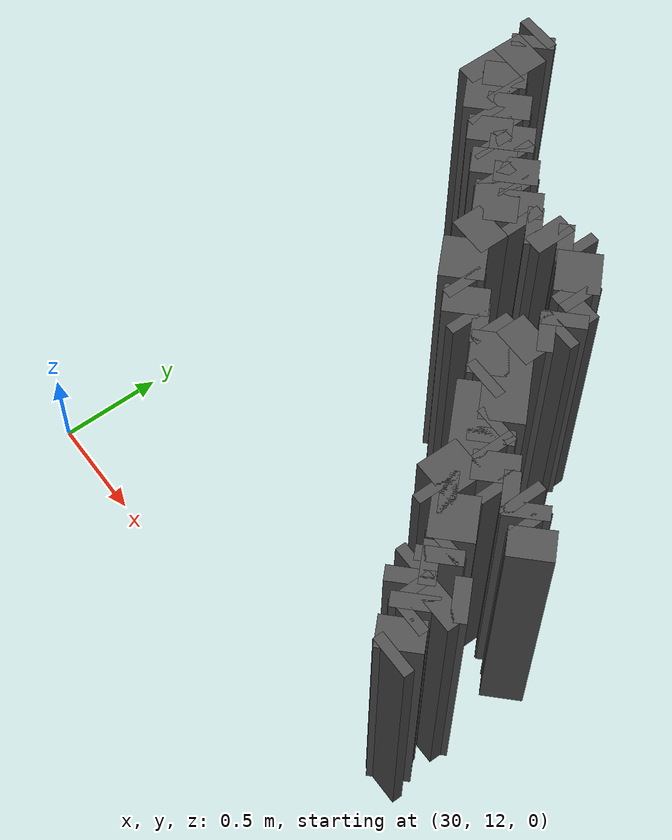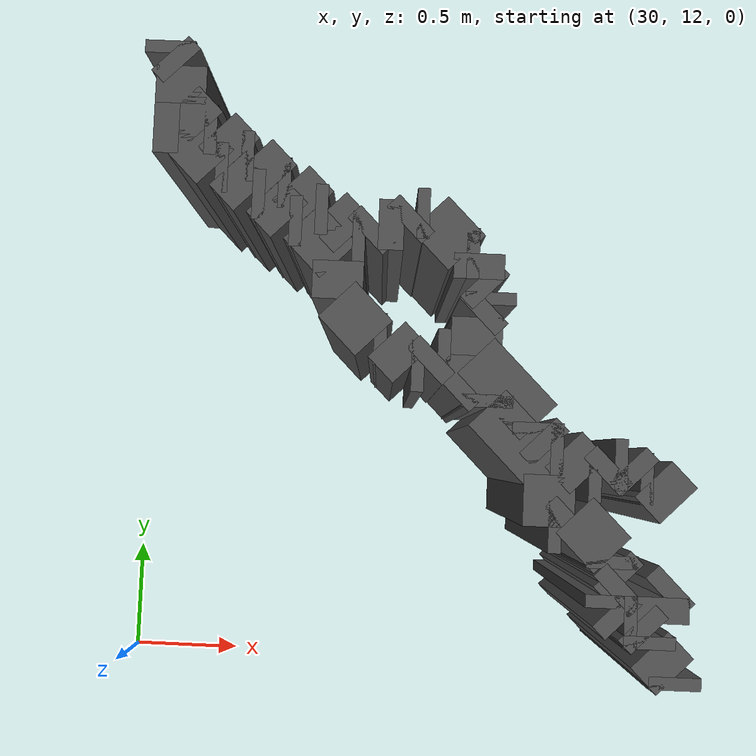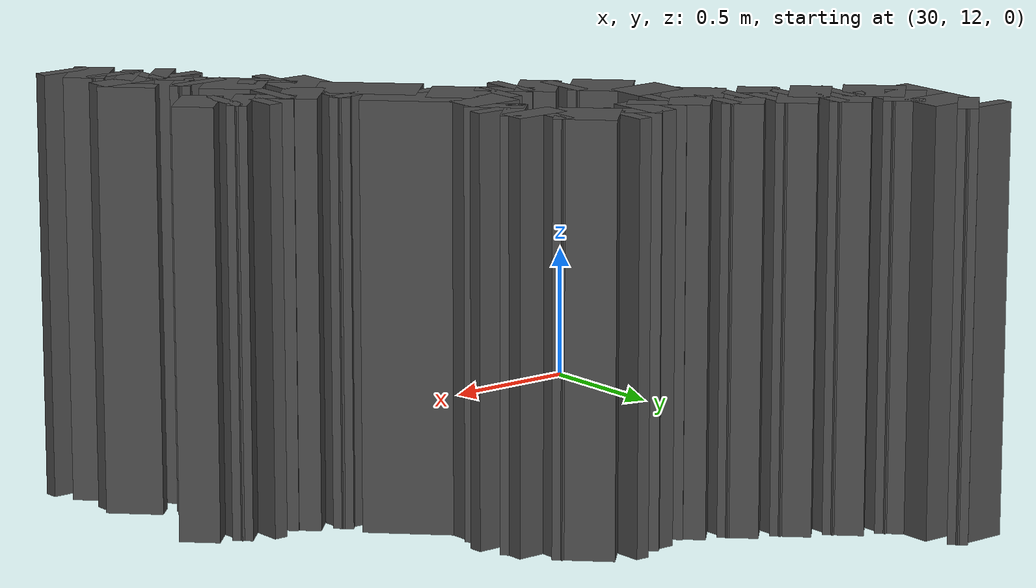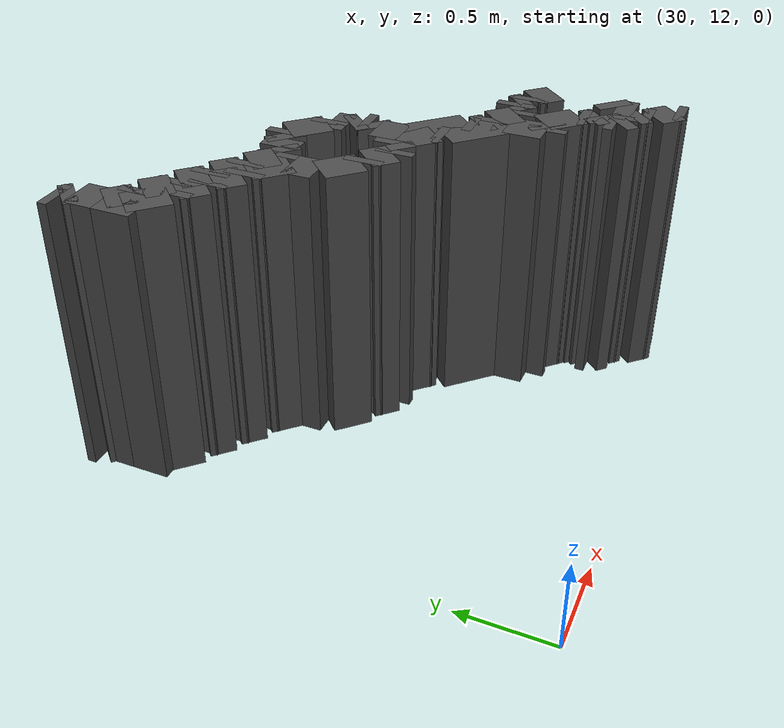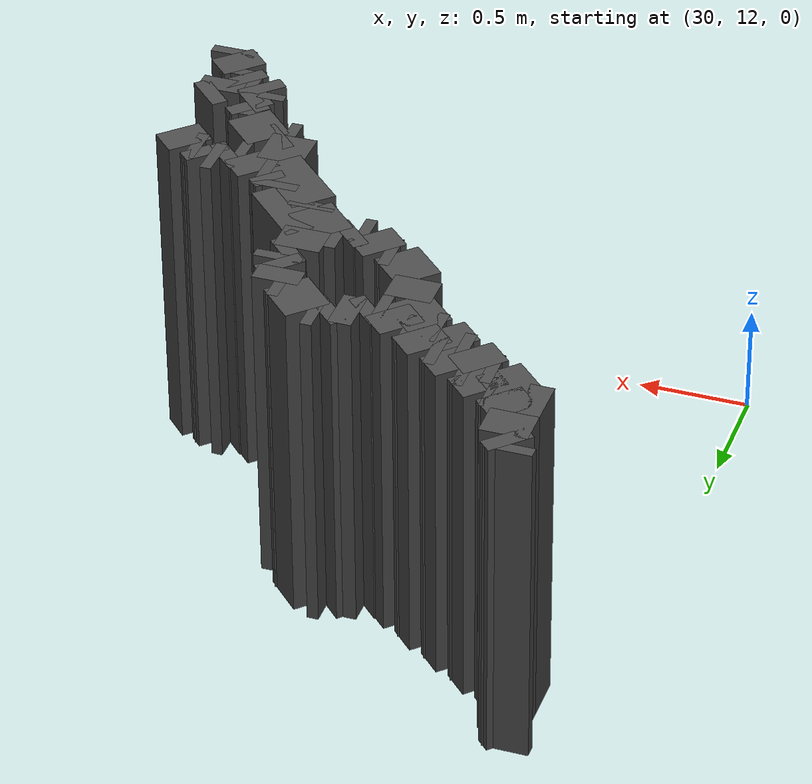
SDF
<sdf version="1.9">
 <model name="generated_walls">
  <static>true</static>
  <link name="wall_161_1450">
   <pose>32.350 12.175 0.75 0 0 1.571</pose>
   <collision name="collision"><geometry><box><size>0.050 0.2 1.5</size></box></geometry></collision>
   <visual name="visual">
    <geometry><box><size>0.050 0.2 1.5</size></box></geometry>
    <material><ambient>0.3 0.3 0.3 1</ambient></material>
   </visual>
  </link>
  <link name="wall_161_1451">
   <pose>32.300 12.250 0.75 0 0 2.356</pose>
   <collision name="collision"><geometry><box><size>0.141 0.2 1.5</size></box></geometry></collision>
   <visual name="visual">
    <geometry><box><size>0.141 0.2 1.5</size></box></geometry>
    <material><ambient>0.3 0.3 0.3 1</ambient></material>
   </visual>
  </link>
  <link name="wall_161_1452">
   <pose>32.250 12.325 0.75 0 0 1.571</pose>
   <collision name="collision"><geometry><box><size>0.050 0.2 1.5</size></box></geometry></collision>
   <visual name="visual">
    <geometry><box><size>0.050 0.2 1.5</size></box></geometry>
    <material><ambient>0.3 0.3 0.3 1</ambient></material>
   </visual>
  </link>
  <link name="wall_161_1453">
   <pose>32.225 12.375 0.75 0 0 2.356</pose>
   <collision name="collision"><geometry><box><size>0.071 0.2 1.5</size></box></geometry></collision>
   <visual name="visual">
    <geometry><box><size>0.071 0.2 1.5</size></box></geometry>
    <material><ambient>0.3 0.3 0.3 1</ambient></material>
   </visual>
  </link>
  <link name="wall_161_1454">
   <pose>32.175 12.400 0.75 0 0 3.142</pose>
   <collision name="collision"><geometry><box><size>0.050 0.2 1.5</size></box></geometry></collision>
   <visual name="visual">
    <geometry><box><size>0.050 0.2 1.5</size></box></geometry>
    <material><ambient>0.3 0.3 0.3 1</ambient></material>
   </visual>
  </link>
  <link name="wall_161_1455">
   <pose>32.125 12.425 0.75 0 0 2.356</pose>
   <collision name="collision"><geometry><box><size>0.071 0.2 1.5</size></box></geometry></collision>
   <visual name="visual">
    <geometry><box><size>0.071 0.2 1.5</size></box></geometry>
    <material><ambient>0.3 0.3 0.3 1</ambient></material>
   </visual>
  </link>
  <link name="wall_161_1456">
   <pose>32.100 12.475 0.75 0 0 1.571</pose>
   <collision name="collision"><geometry><box><size>0.050 0.2 1.5</size></box></geometry></collision>
   <visual name="visual">
    <geometry><box><size>0.050 0.2 1.5</size></box></geometry>
    <material><ambient>0.3 0.3 0.3 1</ambient></material>
   </visual>
  </link>
  <link name="wall_161_1457">
   <pose>32.125 12.525 0.75 0 0 0.785</pose>
   <collision name="collision"><geometry><box><size>0.071 0.2 1.5</size></box></geometry></collision>
   <visual name="visual">
    <geometry><box><size>0.071 0.2 1.5</size></box></geometry>
    <material><ambient>0.3 0.3 0.3 1</ambient></material>
   </visual>
  </link>
  <link name="wall_161_1458">
   <pose>32.125 12.575 0.75 0 0 2.356</pose>
   <collision name="collision"><geometry><box><size>0.071 0.2 1.5</size></box></geometry></collision>
   <visual name="visual">
    <geometry><box><size>0.071 0.2 1.5</size></box></geometry>
    <material><ambient>0.3 0.3 0.3 1</ambient></material>
   </visual>
  </link>
  <link name="wall_161_1459">
   <pose>32.100 12.625 0.75 0 0 1.571</pose>
   <collision name="collision"><geometry><box><size>0.050 0.2 1.5</size></box></geometry></collision>
   <visual name="visual">
    <geometry><box><size>0.050 0.2 1.5</size></box></geometry>
    <material><ambient>0.3 0.3 0.3 1</ambient></material>
   </visual>
  </link>
  <link name="wall_161_1460">
   <pose>32.025 12.725 0.75 0 0 2.356</pose>
   <collision name="collision"><geometry><box><size>0.212 0.2 1.5</size></box></geometry></collision>
   <visual name="visual">
    <geometry><box><size>0.212 0.2 1.5</size></box></geometry>
    <material><ambient>0.3 0.3 0.3 1</ambient></material>
   </visual>
  </link>
  <link name="wall_161_1461">
   <pose>31.925 12.775 0.75 0 0 -2.356</pose>
   <collision name="collision"><geometry><box><size>0.071 0.2 1.5</size></box></geometry></collision>
   <visual name="visual">
    <geometry><box><size>0.071 0.2 1.5</size></box></geometry>
    <material><ambient>0.3 0.3 0.3 1</ambient></material>
   </visual>
  </link>
  <link name="wall_161_1462">
   <pose>31.875 12.750 0.75 0 0 3.142</pose>
   <collision name="collision"><geometry><box><size>0.050 0.2 1.5</size></box></geometry></collision>
   <visual name="visual">
    <geometry><box><size>0.050 0.2 1.5</size></box></geometry>
    <material><ambient>0.3 0.3 0.3 1</ambient></material>
   </visual>
  </link>
  <link name="wall_161_1463">
   <pose>31.850 12.850 0.75 0 0 1.571</pose>
   <collision name="collision"><geometry><box><size>0.200 0.2 1.5</size></box></geometry></collision>
   <visual name="visual">
    <geometry><box><size>0.200 0.2 1.5</size></box></geometry>
    <material><ambient>0.3 0.3 0.3 1</ambient></material>
   </visual>
  </link>
  <link name="wall_161_1464">
   <pose>31.725 13.075 0.75 0 0 2.356</pose>
   <collision name="collision"><geometry><box><size>0.354 0.2 1.5</size></box></geometry></collision>
   <visual name="visual">
    <geometry><box><size>0.354 0.2 1.5</size></box></geometry>
    <material><ambient>0.3 0.3 0.3 1</ambient></material>
   </visual>
  </link>
  <link name="wall_161_1465">
   <pose>31.600 13.225 0.75 0 0 1.571</pose>
   <collision name="collision"><geometry><box><size>0.050 0.2 1.5</size></box></geometry></collision>
   <visual name="visual">
    <geometry><box><size>0.050 0.2 1.5</size></box></geometry>
    <material><ambient>0.3 0.3 0.3 1</ambient></material>
   </visual>
  </link>
  <link name="wall_161_1466">
   <pose>31.525 13.325 0.75 0 0 2.356</pose>
   <collision name="collision"><geometry><box><size>0.212 0.2 1.5</size></box></geometry></collision>
   <visual name="visual">
    <geometry><box><size>0.212 0.2 1.5</size></box></geometry>
    <material><ambient>0.3 0.3 0.3 1</ambient></material>
   </visual>
  </link>
  <link name="wall_161_1467">
   <pose>31.425 13.400 0.75 0 0 3.142</pose>
   <collision name="collision"><geometry><box><size>0.050 0.2 1.5</size></box></geometry></collision>
   <visual name="visual">
    <geometry><box><size>0.050 0.2 1.5</size></box></geometry>
    <material><ambient>0.3 0.3 0.3 1</ambient></material>
   </visual>
  </link>
  <link name="wall_161_1468">
   <pose>31.375 13.375 0.75 0 0 -2.356</pose>
   <collision name="collision"><geometry><box><size>0.071 0.2 1.5</size></box></geometry></collision>
   <visual name="visual">
    <geometry><box><size>0.071 0.2 1.5</size></box></geometry>
    <material><ambient>0.3 0.3 0.3 1</ambient></material>
   </visual>
  </link>
  <link name="wall_161_1469">
   <pose>31.325 13.350 0.75 0 0 3.142</pose>
   <collision name="collision"><geometry><box><size>0.050 0.2 1.5</size></box></geometry></collision>
   <visual name="visual">
    <geometry><box><size>0.050 0.2 1.5</size></box></geometry>
    <material><ambient>0.3 0.3 0.3 1</ambient></material>
   </visual>
  </link>
  <link name="wall_161_1470">
   <pose>31.250 13.400 0.75 0 0 2.356</pose>
   <collision name="collision"><geometry><box><size>0.141 0.2 1.5</size></box></geometry></collision>
   <visual name="visual">
    <geometry><box><size>0.141 0.2 1.5</size></box></geometry>
    <material><ambient>0.3 0.3 0.3 1</ambient></material>
   </visual>
  </link>
  <link name="wall_161_1471">
   <pose>31.175 13.450 0.75 0 0 3.142</pose>
   <collision name="collision"><geometry><box><size>0.050 0.2 1.5</size></box></geometry></collision>
   <visual name="visual">
    <geometry><box><size>0.050 0.2 1.5</size></box></geometry>
    <material><ambient>0.3 0.3 0.3 1</ambient></material>
   </visual>
  </link>
  <link name="wall_161_1472">
   <pose>31.075 13.525 0.75 0 0 2.356</pose>
   <collision name="collision"><geometry><box><size>0.212 0.2 1.5</size></box></geometry></collision>
   <visual name="visual">
    <geometry><box><size>0.212 0.2 1.5</size></box></geometry>
    <material><ambient>0.3 0.3 0.3 1</ambient></material>
   </visual>
  </link>
  <link name="wall_161_1473">
   <pose>31.000 13.675 0.75 0 0 1.571</pose>
   <collision name="collision"><geometry><box><size>0.150 0.2 1.5</size></box></geometry></collision>
   <visual name="visual">
    <geometry><box><size>0.150 0.2 1.5</size></box></geometry>
    <material><ambient>0.3 0.3 0.3 1</ambient></material>
   </visual>
  </link>
  <link name="wall_161_1474">
   <pose>30.925 13.825 0.75 0 0 2.356</pose>
   <collision name="collision"><geometry><box><size>0.212 0.2 1.5</size></box></geometry></collision>
   <visual name="visual">
    <geometry><box><size>0.212 0.2 1.5</size></box></geometry>
    <material><ambient>0.3 0.3 0.3 1</ambient></material>
   </visual>
  </link>
  <link name="wall_161_1475">
   <pose>30.825 13.900 0.75 0 0 3.142</pose>
   <collision name="collision"><geometry><box><size>0.050 0.2 1.5</size></box></geometry></collision>
   <visual name="visual">
    <geometry><box><size>0.050 0.2 1.5</size></box></geometry>
    <material><ambient>0.3 0.3 0.3 1</ambient></material>
   </visual>
  </link>
  <link name="wall_161_1476">
   <pose>30.750 13.950 0.75 0 0 2.356</pose>
   <collision name="collision"><geometry><box><size>0.141 0.2 1.5</size></box></geometry></collision>
   <visual name="visual">
    <geometry><box><size>0.141 0.2 1.5</size></box></geometry>
    <material><ambient>0.3 0.3 0.3 1</ambient></material>
   </visual>
  </link>
  <link name="wall_161_1477">
   <pose>30.675 14.000 0.75 0 0 3.142</pose>
   <collision name="collision"><geometry><box><size>0.050 0.2 1.5</size></box></geometry></collision>
   <visual name="visual">
    <geometry><box><size>0.050 0.2 1.5</size></box></geometry>
    <material><ambient>0.3 0.3 0.3 1</ambient></material>
   </visual>
  </link>
  <link name="wall_161_1478">
   <pose>30.600 14.050 0.75 0 0 2.356</pose>
   <collision name="collision"><geometry><box><size>0.141 0.2 1.5</size></box></geometry></collision>
   <visual name="visual">
    <geometry><box><size>0.141 0.2 1.5</size></box></geometry>
    <material><ambient>0.3 0.3 0.3 1</ambient></material>
   </visual>
  </link>
  <link name="wall_161_1479">
   <pose>30.525 14.100 0.75 0 0 3.142</pose>
   <collision name="collision"><geometry><box><size>0.050 0.2 1.5</size></box></geometry></collision>
   <visual name="visual">
    <geometry><box><size>0.050 0.2 1.5</size></box></geometry>
    <material><ambient>0.3 0.3 0.3 1</ambient></material>
   </visual>
  </link>
  <link name="wall_161_1480">
   <pose>30.425 14.175 0.75 0 0 2.356</pose>
   <collision name="collision"><geometry><box><size>0.212 0.2 1.5</size></box></geometry></collision>
   <visual name="visual">
    <geometry><box><size>0.212 0.2 1.5</size></box></geometry>
    <material><ambient>0.3 0.3 0.3 1</ambient></material>
   </visual>
  </link>
  <link name="wall_161_1481">
   <pose>30.300 14.250 0.75 0 0 3.142</pose>
   <collision name="collision"><geometry><box><size>0.100 0.2 1.5</size></box></geometry></collision>
   <visual name="visual">
    <geometry><box><size>0.100 0.2 1.5</size></box></geometry>
    <material><ambient>0.3 0.3 0.3 1</ambient></material>
   </visual>
  </link>
  <link name="wall_161_2664">
   <pose>30.300 14.575 0.75 0 0 -1.571</pose>
   <collision name="collision"><geometry><box><size>0.050 0.2 1.5</size></box></geometry></collision>
   <visual name="visual">
    <geometry><box><size>0.050 0.2 1.5</size></box></geometry>
    <material><ambient>0.3 0.3 0.3 1</ambient></material>
   </visual>
  </link>
  <link name="wall_161_2665">
   <pose>30.325 14.525 0.75 0 0 -0.785</pose>
   <collision name="collision"><geometry><box><size>0.071 0.2 1.5</size></box></geometry></collision>
   <visual name="visual">
    <geometry><box><size>0.071 0.2 1.5</size></box></geometry>
    <material><ambient>0.3 0.3 0.3 1</ambient></material>
   </visual>
  </link>
  <link name="wall_161_2666">
   <pose>30.350 14.425 0.75 0 0 -1.571</pose>
   <collision name="collision"><geometry><box><size>0.150 0.2 1.5</size></box></geometry></collision>
   <visual name="visual">
    <geometry><box><size>0.150 0.2 1.5</size></box></geometry>
    <material><ambient>0.3 0.3 0.3 1</ambient></material>
   </visual>
  </link>
  <link name="wall_161_2667">
   <pose>30.400 14.300 0.75 0 0 -0.785</pose>
   <collision name="collision"><geometry><box><size>0.141 0.2 1.5</size></box></geometry></collision>
   <visual name="visual">
    <geometry><box><size>0.141 0.2 1.5</size></box></geometry>
    <material><ambient>0.3 0.3 0.3 1</ambient></material>
   </visual>
  </link>
  <link name="wall_161_2668">
   <pose>30.475 14.250 0.75 0 0 0.000</pose>
   <collision name="collision"><geometry><box><size>0.050 0.2 1.5</size></box></geometry></collision>
   <visual name="visual">
    <geometry><box><size>0.050 0.2 1.5</size></box></geometry>
    <material><ambient>0.3 0.3 0.3 1</ambient></material>
   </visual>
  </link>
  <link name="wall_161_2669">
   <pose>30.550 14.200 0.75 0 0 -0.785</pose>
   <collision name="collision"><geometry><box><size>0.141 0.2 1.5</size></box></geometry></collision>
   <visual name="visual">
    <geometry><box><size>0.141 0.2 1.5</size></box></geometry>
    <material><ambient>0.3 0.3 0.3 1</ambient></material>
   </visual>
  </link>
  <link name="wall_161_2670">
   <pose>30.625 14.150 0.75 0 0 0.000</pose>
   <collision name="collision"><geometry><box><size>0.050 0.2 1.5</size></box></geometry></collision>
   <visual name="visual">
    <geometry><box><size>0.050 0.2 1.5</size></box></geometry>
    <material><ambient>0.3 0.3 0.3 1</ambient></material>
   </visual>
  </link>
  <link name="wall_161_2671">
   <pose>30.700 14.100 0.75 0 0 -0.785</pose>
   <collision name="collision"><geometry><box><size>0.141 0.2 1.5</size></box></geometry></collision>
   <visual name="visual">
    <geometry><box><size>0.141 0.2 1.5</size></box></geometry>
    <material><ambient>0.3 0.3 0.3 1</ambient></material>
   </visual>
  </link>
  <link name="wall_161_2672">
   <pose>30.775 14.050 0.75 0 0 0.000</pose>
   <collision name="collision"><geometry><box><size>0.050 0.2 1.5</size></box></geometry></collision>
   <visual name="visual">
    <geometry><box><size>0.050 0.2 1.5</size></box></geometry>
    <material><ambient>0.3 0.3 0.3 1</ambient></material>
   </visual>
  </link>
  <link name="wall_161_2673">
   <pose>30.850 14.000 0.75 0 0 -0.785</pose>
   <collision name="collision"><geometry><box><size>0.141 0.2 1.5</size></box></geometry></collision>
   <visual name="visual">
    <geometry><box><size>0.141 0.2 1.5</size></box></geometry>
    <material><ambient>0.3 0.3 0.3 1</ambient></material>
   </visual>
  </link>
  <link name="wall_161_2674">
   <pose>30.925 13.950 0.75 0 0 0.000</pose>
   <collision name="collision"><geometry><box><size>0.050 0.2 1.5</size></box></geometry></collision>
   <visual name="visual">
    <geometry><box><size>0.050 0.2 1.5</size></box></geometry>
    <material><ambient>0.3 0.3 0.3 1</ambient></material>
   </visual>
  </link>
  <link name="wall_161_2675">
   <pose>31.000 13.900 0.75 0 0 -0.785</pose>
   <collision name="collision"><geometry><box><size>0.141 0.2 1.5</size></box></geometry></collision>
   <visual name="visual">
    <geometry><box><size>0.141 0.2 1.5</size></box></geometry>
    <material><ambient>0.3 0.3 0.3 1</ambient></material>
   </visual>
  </link>
  <link name="wall_161_2676">
   <pose>31.075 13.850 0.75 0 0 0.000</pose>
   <collision name="collision"><geometry><box><size>0.050 0.2 1.5</size></box></geometry></collision>
   <visual name="visual">
    <geometry><box><size>0.050 0.2 1.5</size></box></geometry>
    <material><ambient>0.3 0.3 0.3 1</ambient></material>
   </visual>
  </link>
  <link name="wall_161_2677">
   <pose>31.125 13.875 0.75 0 0 0.785</pose>
   <collision name="collision"><geometry><box><size>0.071 0.2 1.5</size></box></geometry></collision>
   <visual name="visual">
    <geometry><box><size>0.071 0.2 1.5</size></box></geometry>
    <material><ambient>0.3 0.3 0.3 1</ambient></material>
   </visual>
  </link>
  <link name="wall_161_2678">
   <pose>31.200 13.900 0.75 0 0 0.000</pose>
   <collision name="collision"><geometry><box><size>0.100 0.2 1.5</size></box></geometry></collision>
   <visual name="visual">
    <geometry><box><size>0.100 0.2 1.5</size></box></geometry>
    <material><ambient>0.3 0.3 0.3 1</ambient></material>
   </visual>
  </link>
  <link name="wall_161_2679">
   <pose>31.275 13.925 0.75 0 0 0.785</pose>
   <collision name="collision"><geometry><box><size>0.071 0.2 1.5</size></box></geometry></collision>
   <visual name="visual">
    <geometry><box><size>0.071 0.2 1.5</size></box></geometry>
    <material><ambient>0.3 0.3 0.3 1</ambient></material>
   </visual>
  </link>
  <link name="wall_161_2680">
   <pose>31.325 13.950 0.75 0 0 0.000</pose>
   <collision name="collision"><geometry><box><size>0.050 0.2 1.5</size></box></geometry></collision>
   <visual name="visual">
    <geometry><box><size>0.050 0.2 1.5</size></box></geometry>
    <material><ambient>0.3 0.3 0.3 1</ambient></material>
   </visual>
  </link>
  <link name="wall_161_2681">
   <pose>31.425 13.875 0.75 0 0 -0.785</pose>
   <collision name="collision"><geometry><box><size>0.212 0.2 1.5</size></box></geometry></collision>
   <visual name="visual">
    <geometry><box><size>0.212 0.2 1.5</size></box></geometry>
    <material><ambient>0.3 0.3 0.3 1</ambient></material>
   </visual>
  </link>
  <link name="wall_161_2682">
   <pose>31.525 13.800 0.75 0 0 0.000</pose>
   <collision name="collision"><geometry><box><size>0.050 0.2 1.5</size></box></geometry></collision>
   <visual name="visual">
    <geometry><box><size>0.050 0.2 1.5</size></box></geometry>
    <material><ambient>0.3 0.3 0.3 1</ambient></material>
   </visual>
  </link>
  <link name="wall_161_2683">
   <pose>31.550 13.750 0.75 0 0 -1.571</pose>
   <collision name="collision"><geometry><box><size>0.100 0.2 1.5</size></box></geometry></collision>
   <visual name="visual">
    <geometry><box><size>0.100 0.2 1.5</size></box></geometry>
    <material><ambient>0.3 0.3 0.3 1</ambient></material>
   </visual>
  </link>
  <link name="wall_161_2684">
   <pose>31.575 13.675 0.75 0 0 -0.785</pose>
   <collision name="collision"><geometry><box><size>0.071 0.2 1.5</size></box></geometry></collision>
   <visual name="visual">
    <geometry><box><size>0.071 0.2 1.5</size></box></geometry>
    <material><ambient>0.3 0.3 0.3 1</ambient></material>
   </visual>
  </link>
  <link name="wall_161_2685">
   <pose>31.600 13.625 0.75 0 0 -1.571</pose>
   <collision name="collision"><geometry><box><size>0.050 0.2 1.5</size></box></geometry></collision>
   <visual name="visual">
    <geometry><box><size>0.050 0.2 1.5</size></box></geometry>
    <material><ambient>0.3 0.3 0.3 1</ambient></material>
   </visual>
  </link>
  <link name="wall_161_2686">
   <pose>31.575 13.575 0.75 0 0 -2.356</pose>
   <collision name="collision"><geometry><box><size>0.071 0.2 1.5</size></box></geometry></collision>
   <visual name="visual">
    <geometry><box><size>0.071 0.2 1.5</size></box></geometry>
    <material><ambient>0.3 0.3 0.3 1</ambient></material>
   </visual>
  </link>
  <link name="wall_161_2687">
   <pose>31.550 13.475 0.75 0 0 -1.571</pose>
   <collision name="collision"><geometry><box><size>0.150 0.2 1.5</size></box></geometry></collision>
   <visual name="visual">
    <geometry><box><size>0.150 0.2 1.5</size></box></geometry>
    <material><ambient>0.3 0.3 0.3 1</ambient></material>
   </visual>
  </link>
  <link name="wall_161_2688">
   <pose>31.675 13.275 0.75 0 0 -0.785</pose>
   <collision name="collision"><geometry><box><size>0.354 0.2 1.5</size></box></geometry></collision>
   <visual name="visual">
    <geometry><box><size>0.354 0.2 1.5</size></box></geometry>
    <material><ambient>0.3 0.3 0.3 1</ambient></material>
   </visual>
  </link>
  <link name="wall_161_2689">
   <pose>31.800 13.125 0.75 0 0 -1.571</pose>
   <collision name="collision"><geometry><box><size>0.050 0.2 1.5</size></box></geometry></collision>
   <visual name="visual">
    <geometry><box><size>0.050 0.2 1.5</size></box></geometry>
    <material><ambient>0.3 0.3 0.3 1</ambient></material>
   </visual>
  </link>
  <link name="wall_161_2690">
   <pose>31.825 13.075 0.75 0 0 -0.785</pose>
   <collision name="collision"><geometry><box><size>0.071 0.2 1.5</size></box></geometry></collision>
   <visual name="visual">
    <geometry><box><size>0.071 0.2 1.5</size></box></geometry>
    <material><ambient>0.3 0.3 0.3 1</ambient></material>
   </visual>
  </link>
  <link name="wall_161_2691">
   <pose>31.875 13.050 0.75 0 0 0.000</pose>
   <collision name="collision"><geometry><box><size>0.050 0.2 1.5</size></box></geometry></collision>
   <visual name="visual">
    <geometry><box><size>0.050 0.2 1.5</size></box></geometry>
    <material><ambient>0.3 0.3 0.3 1</ambient></material>
   </visual>
  </link>
  <link name="wall_161_2692">
   <pose>31.950 13.000 0.75 0 0 -0.785</pose>
   <collision name="collision"><geometry><box><size>0.141 0.2 1.5</size></box></geometry></collision>
   <visual name="visual">
    <geometry><box><size>0.141 0.2 1.5</size></box></geometry>
    <material><ambient>0.3 0.3 0.3 1</ambient></material>
   </visual>
  </link>
  <link name="wall_161_2693">
   <pose>32.025 12.950 0.75 0 0 0.000</pose>
   <collision name="collision"><geometry><box><size>0.050 0.2 1.5</size></box></geometry></collision>
   <visual name="visual">
    <geometry><box><size>0.050 0.2 1.5</size></box></geometry>
    <material><ambient>0.3 0.3 0.3 1</ambient></material>
   </visual>
  </link>
  <link name="wall_161_2694">
   <pose>32.075 12.975 0.75 0 0 0.785</pose>
   <collision name="collision"><geometry><box><size>0.071 0.2 1.5</size></box></geometry></collision>
   <visual name="visual">
    <geometry><box><size>0.071 0.2 1.5</size></box></geometry>
    <material><ambient>0.3 0.3 0.3 1</ambient></material>
   </visual>
  </link>
  <link name="wall_161_2695">
   <pose>32.125 13.000 0.75 0 0 0.000</pose>
   <collision name="collision"><geometry><box><size>0.050 0.2 1.5</size></box></geometry></collision>
   <visual name="visual">
    <geometry><box><size>0.050 0.2 1.5</size></box></geometry>
    <material><ambient>0.3 0.3 0.3 1</ambient></material>
   </visual>
  </link>
  <link name="wall_161_2696">
   <pose>32.175 12.975 0.75 0 0 -0.785</pose>
   <collision name="collision"><geometry><box><size>0.071 0.2 1.5</size></box></geometry></collision>
   <visual name="visual">
    <geometry><box><size>0.071 0.2 1.5</size></box></geometry>
    <material><ambient>0.3 0.3 0.3 1</ambient></material>
   </visual>
  </link>
  <link name="wall_161_2697">
   <pose>32.225 12.950 0.75 0 0 0.000</pose>
   <collision name="collision"><geometry><box><size>0.050 0.2 1.5</size></box></geometry></collision>
   <visual name="visual">
    <geometry><box><size>0.050 0.2 1.5</size></box></geometry>
    <material><ambient>0.3 0.3 0.3 1</ambient></material>
   </visual>
  </link>
  <link name="wall_161_2698">
   <pose>32.300 12.900 0.75 0 0 -0.785</pose>
   <collision name="collision"><geometry><box><size>0.141 0.2 1.5</size></box></geometry></collision>
   <visual name="visual">
    <geometry><box><size>0.141 0.2 1.5</size></box></geometry>
    <material><ambient>0.3 0.3 0.3 1</ambient></material>
   </visual>
  </link>
  <link name="wall_161_2704">
   <pose>32.325 12.525 0.75 0 0 -2.356</pose>
   <collision name="collision"><geometry><box><size>0.071 0.2 1.5</size></box></geometry></collision>
   <visual name="visual">
    <geometry><box><size>0.071 0.2 1.5</size></box></geometry>
    <material><ambient>0.3 0.3 0.3 1</ambient></material>
   </visual>
  </link>
  <link name="wall_161_2705">
   <pose>32.300 12.450 0.75 0 0 -1.571</pose>
   <collision name="collision"><geometry><box><size>0.100 0.2 1.5</size></box></geometry></collision>
   <visual name="visual">
    <geometry><box><size>0.100 0.2 1.5</size></box></geometry>
    <material><ambient>0.3 0.3 0.3 1</ambient></material>
   </visual>
  </link>
 </model>
</sdf>
